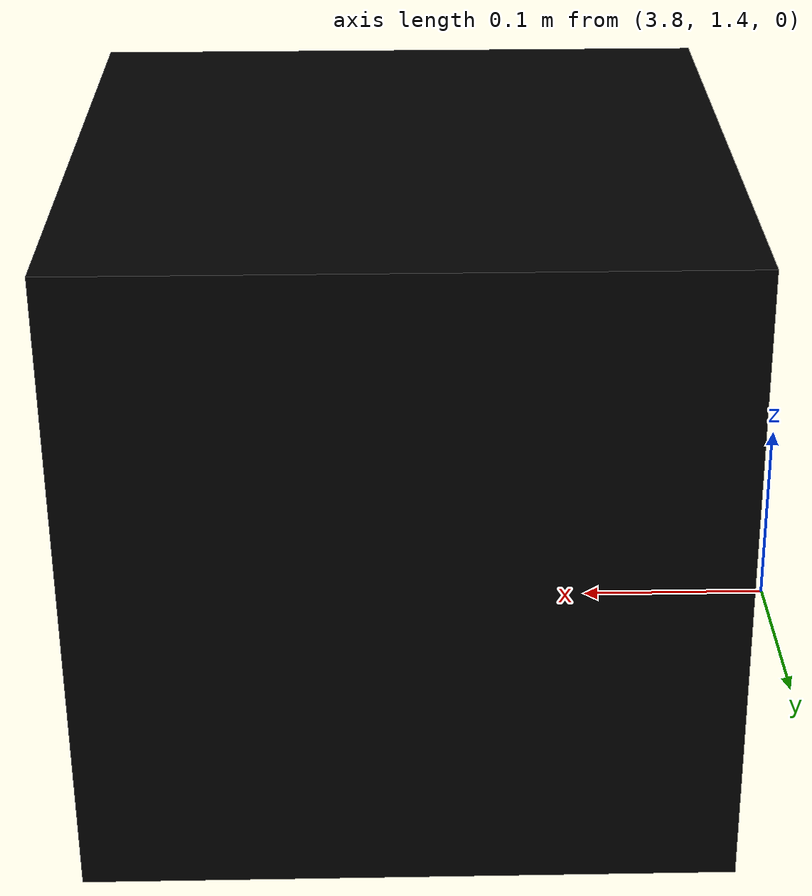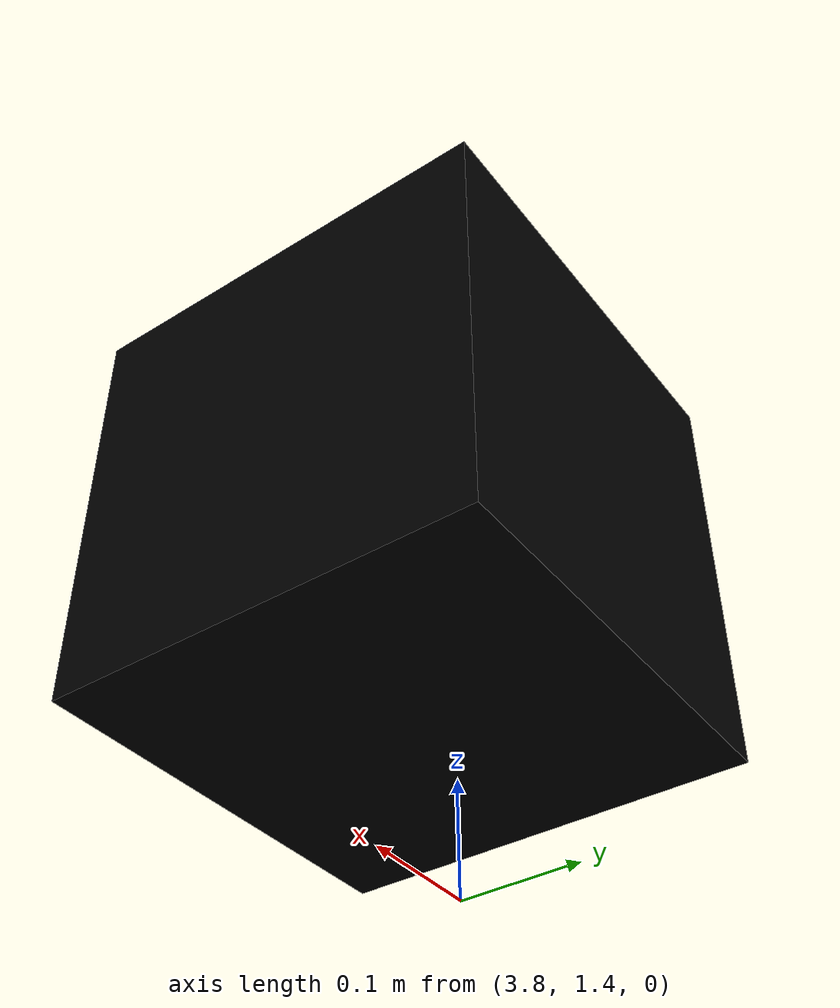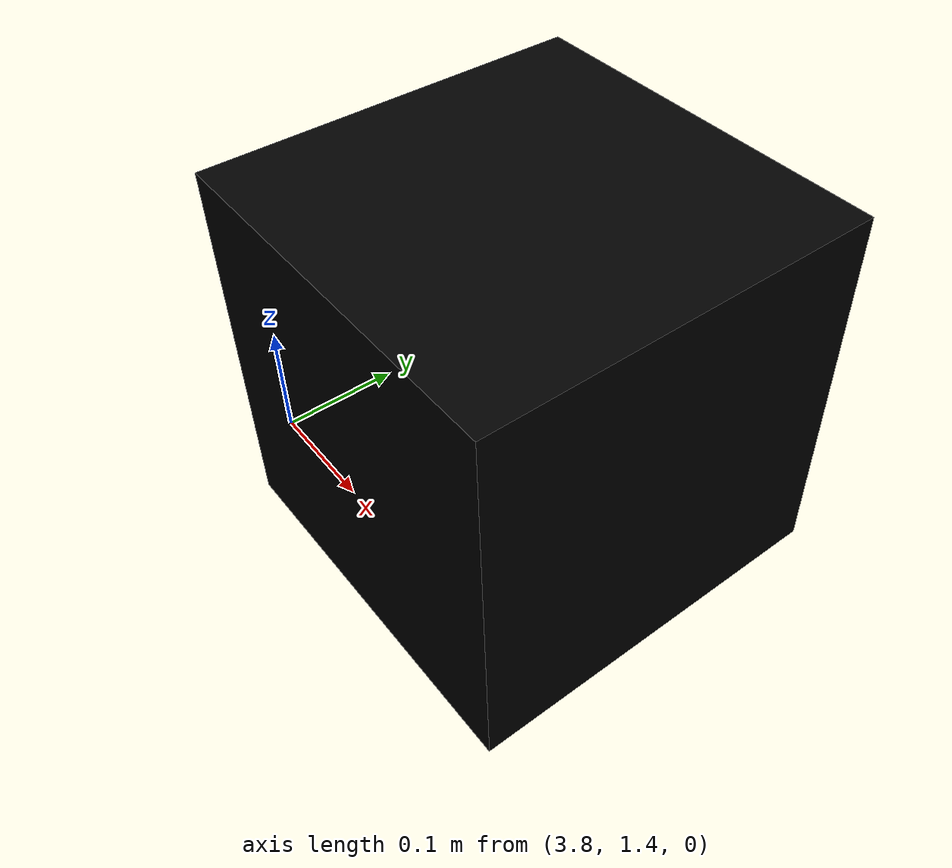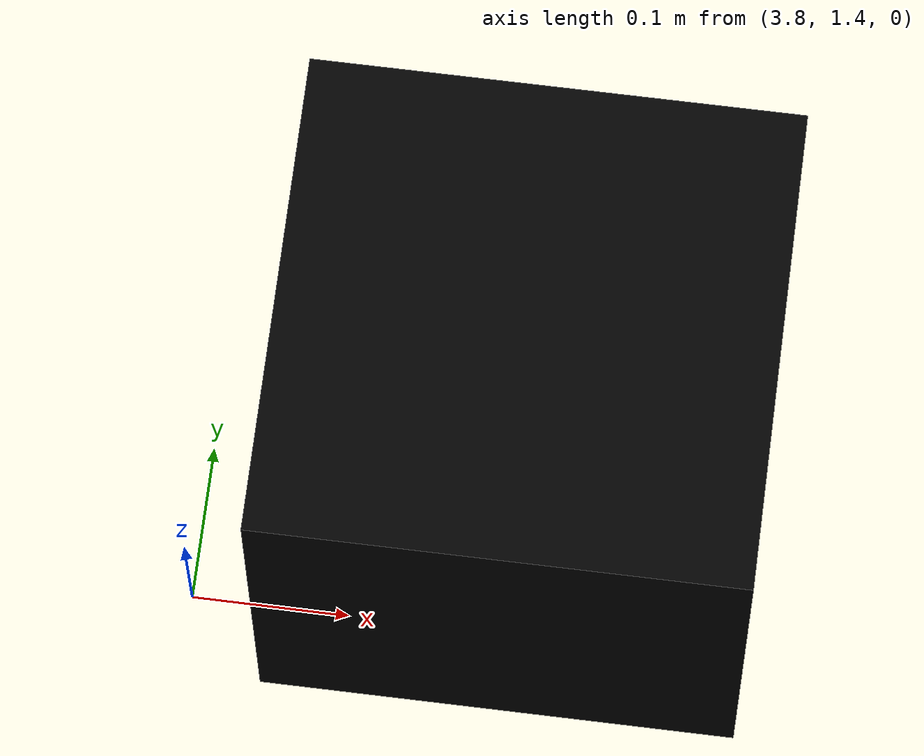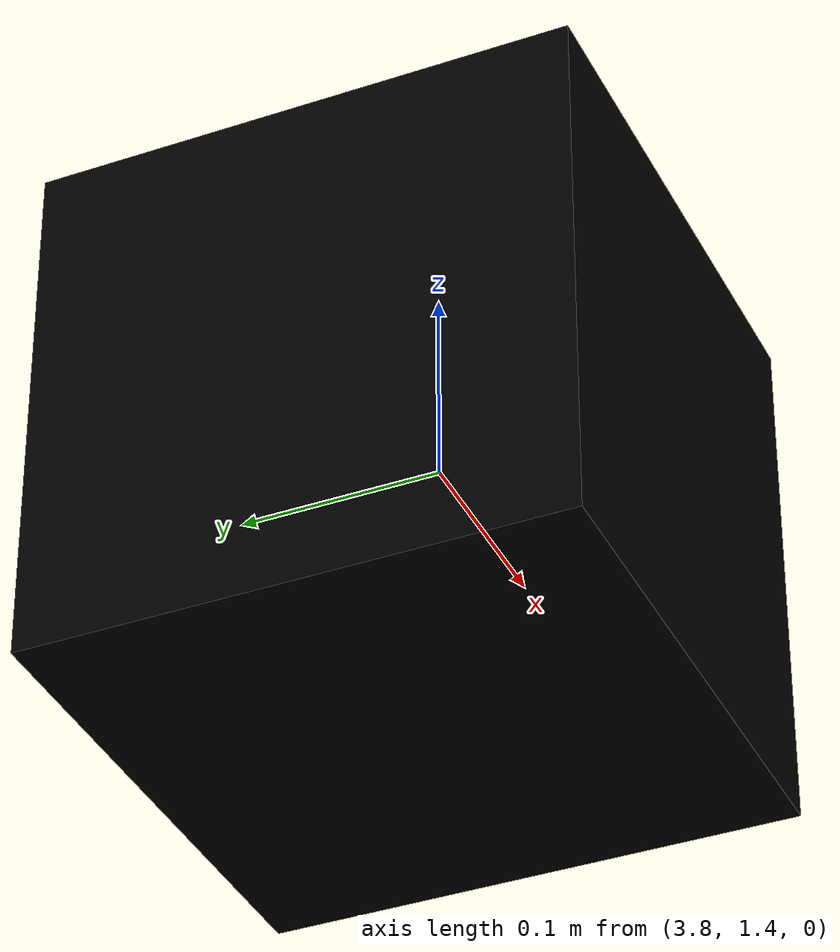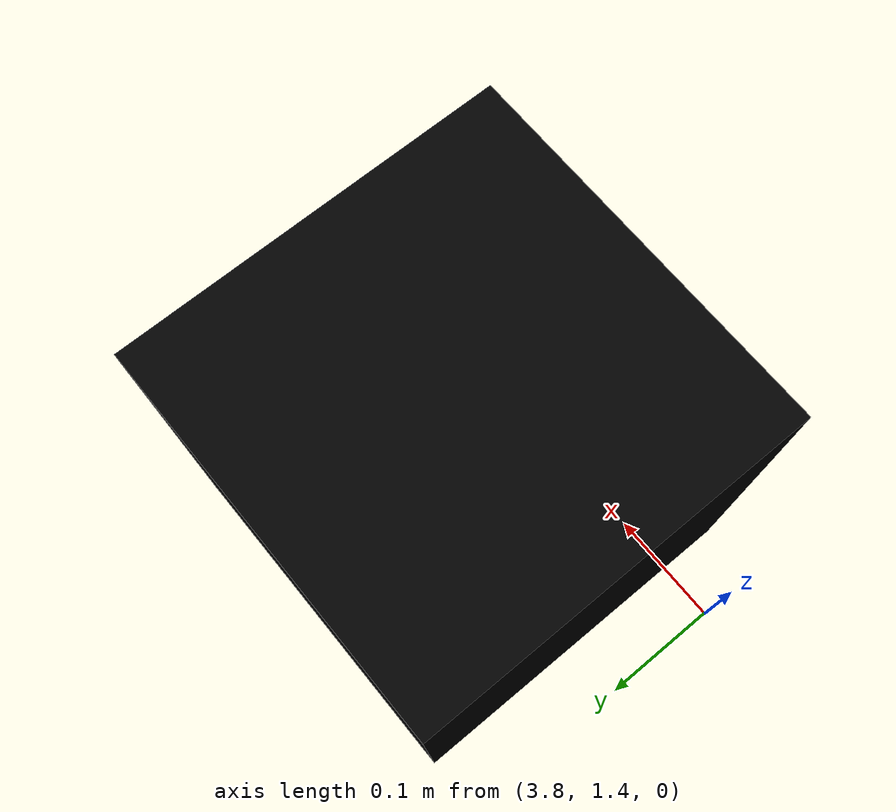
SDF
<?xml version='1.0'?>
<sdf version='1.4'>
  <model name="AruCo_Block_11">
    <static>true</static>
    <link name='chassis'>
            <pose>4 1.5 0.15 0 0 0</pose>

            <collision name='collision'>
              <geometry>
                <box>
                  <size>.3 .3 .3</size>
                </box>
              </geometry>
            </collision>

            <visual name='visual_11'>
              <geometry>
                <box>
                  <size>.3 .3 .3</size>
                </box>
              </geometry>
              <material>
                <script>
                <uri>model://AruCo_Block_11/materials/scripts</uri>
                <uri>model://AruCo_Block_11/materials/textures</uri>
                <name>block11</name>
                </script>
                <ambient>0 0 0 1</ambient>
                <diffuse>0 0 0 1</diffuse>
                <specular>0 0 0 0</specular>
                <emissive>1 1 1 1</emissive>
              </material>
            </visual>
          </link>
  </model>
</sdf>
